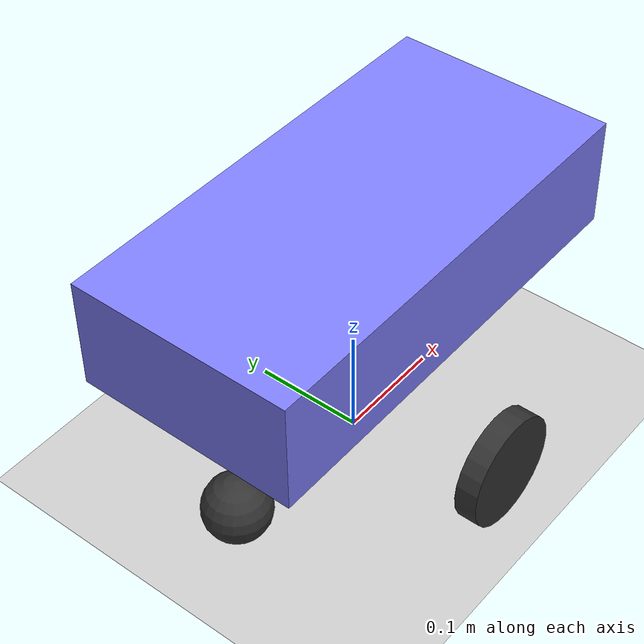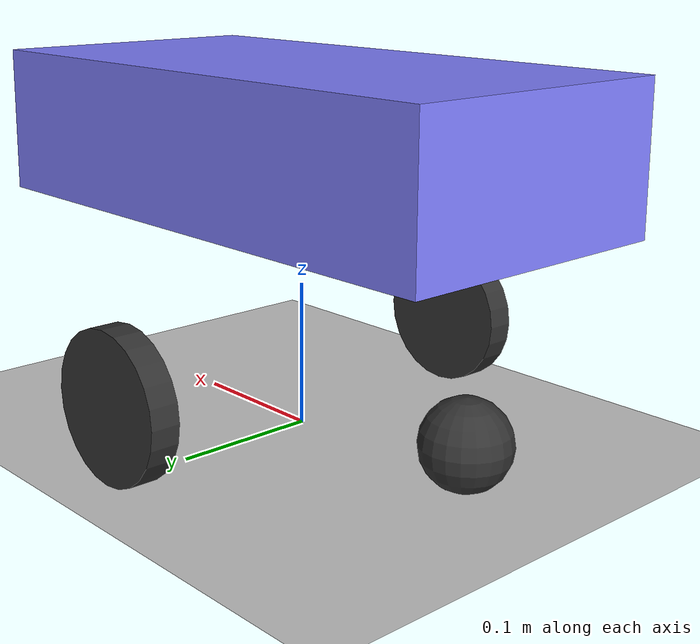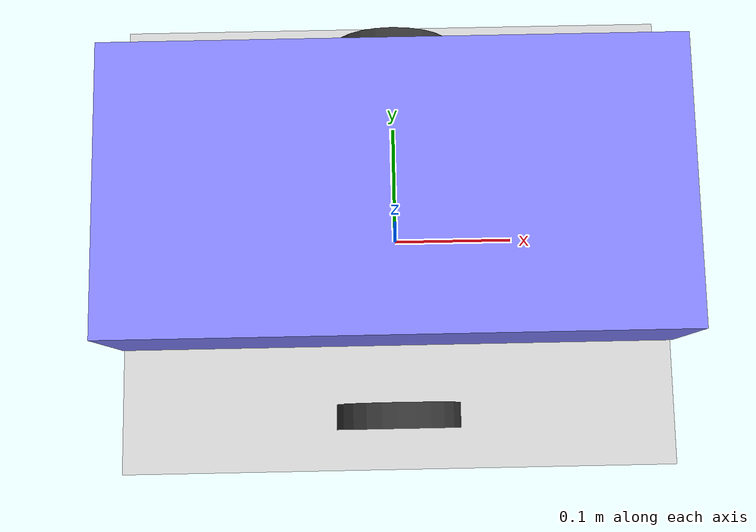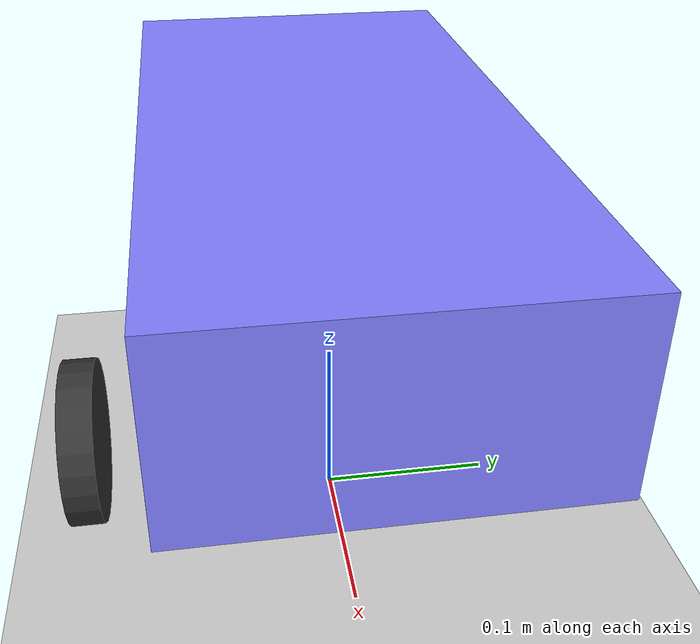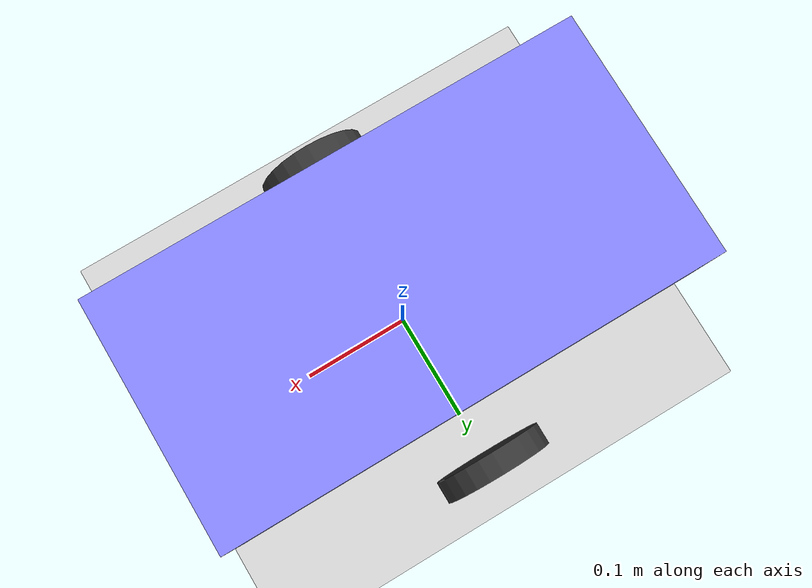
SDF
<?xml version="1.0" ?>
<sdf version="1.10">
  <world name="diff_drive_world">

    <physics name="1ms" type="ignored">
      <max_step_size>0.001</max_step_size>
      <real_time_factor>1.0</real_time_factor>
    </physics>

    <plugin
      filename="gz-sim-physics-system"
      name="gz::sim::systems::Physics">
    </plugin>
    <plugin
      filename="gz-sim-user-commands-system"
      name="gz::sim::systems::UserCommands">
    </plugin>
    <plugin
      filename="gz-sim-scene-broadcaster-system"
      name="gz::sim::systems::SceneBroadcaster">
    </plugin>

    <light type="directional" name="sun">
      <cast_shadows>true</cast_shadows>
      <pose>0 0 10 0 0 0</pose>
      <diffuse>0.8 0.8 0.8 1</diffuse>
      <specular>0.2 0.2 0.2 1</specular>
      <attenuation>
        <range>1000</range>
        <constant>0.9</constant>
        <linear>0.01</linear>
        <quadratic>0.001</quadratic>
      </attenuation>
      <direction>-0.5 0.1 -0.9</direction>
    </light>

    <model name="ground_plane">
      <static>true</static>
      <link name="link">
        <collision name="collision">
          <geometry>
            <plane>
              <normal>0 0 1</normal>
            </plane>
          </geometry>
        </collision>
        <visual name="visual">
          <geometry>
            <plane>
              <normal>0 0 1</normal>
              <size>100 100</size>
            </plane>
          </geometry>
          <material>
            <ambient>0.8 0.8 0.8 1</ambient>
            <diffuse>0.8 0.8 0.8 1</diffuse>
            <specular>0.8 0.8 0.8 1</specular>
          </material>
        </visual>
      </link>
    </model>

    <model name="diff_drive_robot">
      <pose>0 0 0.05 0 0 0</pose>

      <link name="chassis">
        <pose relative_to="__model__">0 0 0.15 0 0 0</pose>
        <inertial>
          <mass>5.0</mass>
          <inertia>
            <ixx>0.020833</ixx>
            <ixy>0</ixy>
            <ixz>0</ixz>
            <iyy>0.070833</iyy>
            <iyz>0</iyz>
            <izz>0.083333</izz>
          </inertia>
        </inertial>
        <visual name="visual">
          <geometry>
            <box>
              <size>0.4 0.2 0.1</size>
            </box>
          </geometry>
          <material>
            <ambient>0.5 0.5 1.0 1</ambient>
            <diffuse>0.5 0.5 1.0 1</diffuse>
            <specular>0.0 0.0 1.0 1</specular>
          </material>
        </visual>
        <collision name="collision">
          <geometry>
            <box>
              <size>0.4 0.2 0.1</size>
            </box>
          </geometry>
        </collision>
      </link>

      <link name="left_wheel">
        <pose relative_to="__model__">0 0.15 0 -1.5707963 0 0</pose>
        <inertial>
          <mass>0.5</mass>
          <inertia>
            <ixx>0.000329</ixx>
            <ixy>0</ixy>
            <ixz>0</ixz>
            <iyy>0.000329</iyy>
            <iyz>0</iyz>
            <izz>0.000625</izz>
          </inertia>
        </inertial>
        <visual name="visual">
          <geometry>
            <cylinder>
              <radius>0.05</radius>
              <length>0.02</length>
            </cylinder>
          </geometry>
          <material>
            <ambient>0.2 0.2 0.2 1</ambient>
            <diffuse>0.2 0.2 0.2 1</diffuse>
            <specular>0.2 0.2 0.2 1</specular>
          </material>
        </visual>
        <collision name="collision">
          <geometry>
            <cylinder>
              <radius>0.05</radius>
              <length>0.02</length>
            </cylinder>
          </geometry>
          <surface>
            <friction>
              <ode>
                <mu>1.0</mu>
                <mu2>1.0</mu2>
              </ode>
            </friction>
          </surface>
        </collision>
      </link>

      <link name="right_wheel">
        <pose relative_to="__model__">0 -0.15 0 -1.5707963 0 0</pose>
        <inertial>
          <mass>0.5</mass>
          <inertia>
            <ixx>0.000329</ixx>
            <ixy>0</ixy>
            <ixz>0</ixz>
            <iyy>0.000329</iyy>
            <iyz>0</iyz>
            <izz>0.000625</izz>
          </inertia>
        </inertial>
        <visual name="visual">
          <geometry>
            <cylinder>
              <radius>0.05</radius>
              <length>0.02</length>
            </cylinder>
          </geometry>
          <material>
            <ambient>0.2 0.2 0.2 1</ambient>
            <diffuse>0.2 0.2 0.2 1</diffuse>
            <specular>0.2 0.2 0.2 1</specular>
          </material>
        </visual>
        <collision name="collision">
          <geometry>
            <cylinder>
              <radius>0.05</radius>
              <length>0.02</length>
            </cylinder>
          </geometry>
          <surface>
            <friction>
              <ode>
                <mu>1.0</mu>
                <mu2>1.0</mu2>
              </ode>
            </friction>
          </surface>
        </collision>
      </link>

      <joint name="left_wheel_joint" type="revolute">
        <parent>chassis</parent>
        <child>left_wheel</child>
        <axis>
          <xyz expressed_in="__model__">0 1 0</xyz>
          <limit>
            <lower>-1.79769e+308</lower>
            <upper>1.79769e+308</upper>
          </limit>
        </axis>
      </joint>

      <joint name="right_wheel_joint" type="revolute">
        <parent>chassis</parent>
        <child>right_wheel</child>
        <axis>
          <xyz expressed_in="__model__">0 1 0</xyz>
          <limit>
            <lower>-1.79769e+308</lower>
            <upper>1.79769e+308</upper>
          </limit>
        </axis>
      </joint>

      <link name="caster">
        <pose relative_to="__model__">-0.15 0 -0.02 0 0 0</pose>
        <inertial>
          <mass>0.2</mass>
          <inertia>
            <ixx>0.000072</ixx>
            <ixy>0</ixy>
            <ixz>0</ixz>
            <iyy>0.000072</iyy>
            <iyz>0</iyz>
            <izz>0.000072</izz>
          </inertia>
        </inertial>
        <visual name="visual">
          <geometry>
            <sphere>
              <radius>0.03</radius>
            </sphere>
          </geometry>
          <material>
            <ambient>0.2 0.2 0.2 1</ambient>
            <diffuse>0.2 0.2 0.2 1</diffuse>
            <specular>0.2 0.2 0.2 1</specular>
          </material>
        </visual>
        <collision name="collision">
          <geometry>
            <sphere>
              <radius>0.03</radius>
            </sphere>
          </geometry>
          <surface>
            <friction>
              <ode>
                <mu>0.0</mu>
                <mu2>0.0</mu2>
              </ode>
            </friction>
          </surface>
        </collision>
      </link>

      <joint name="caster_joint" type="ball">
        <parent>chassis</parent>
        <child>caster</child>
      </joint>

      <plugin
        filename="gz-sim-diff-drive-system"
        name="gz::sim::systems::DiffDrive">
        <left_joint>left_wheel_joint</left_joint>
        <right_joint>right_wheel_joint</right_joint>
        <wheel_separation>0.3</wheel_separation>
        <wheel_radius>0.05</wheel_radius>
        <odom_publish_frequency>50</odom_publish_frequency>
        <topic>cmd_vel</topic>
        <odom_topic>odom</odom_topic>
        <frame_id>odom</frame_id>
        <child_frame_id>chassis</child_frame_id>
      </plugin>

    </model>

  </world>
</sdf>
